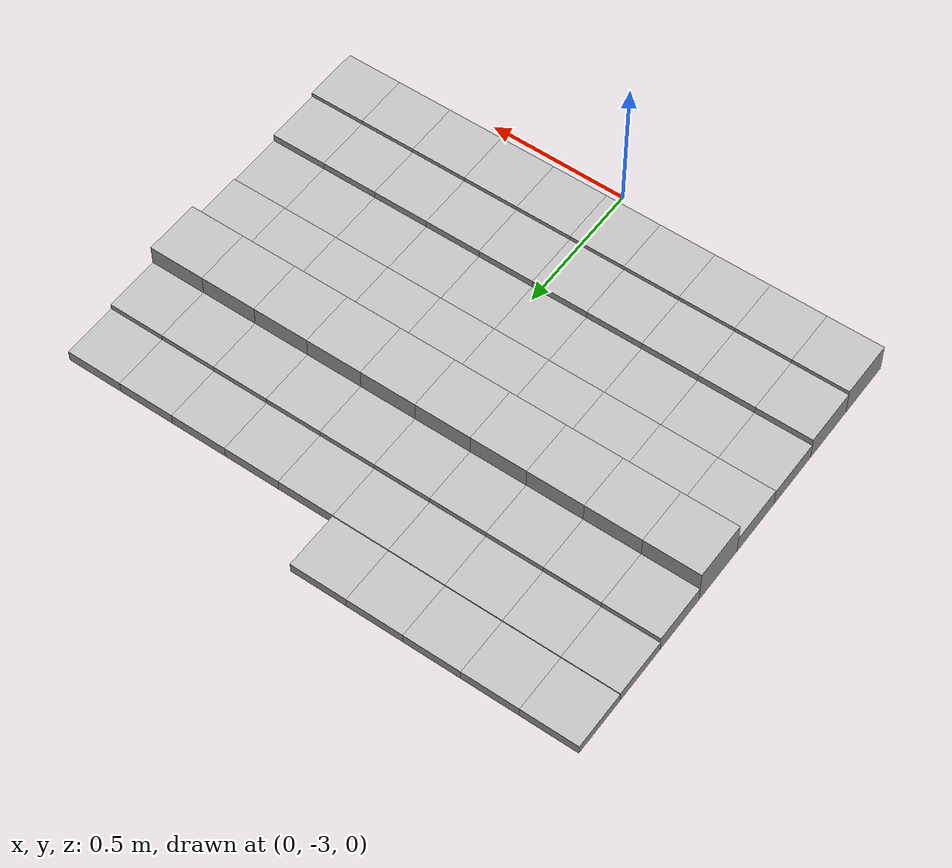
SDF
<sdf version="1.6">
 <model name="Terrain">
  <static>true</static>
  <link name="box_7_0">
   <pose>-0.9 -1.4 0.0180573859892 0 0 0</pose>
   <inertial>
    <mass>1.0</mass>
    <inertia><ixx>0.0</ixx><ixy>0.0</ixy><ixz>0.0</ixz><iyy>0.0</iyy><iyz>0.0</iyz><izz>0.0</izz></inertia>
   </inertial>
   <collision name="collision"><geometry><box><size>0.2 0.2 0.0361147719784</size></box></geometry></collision>
   <visual name="visual"><geometry><box><size>0.2 0.2 0.0361147719784</size></box></geometry></visual>
  </link>
  <link name="box_7_1">
   <pose>-0.7 -1.4 0.0180573859892 0 0 0</pose>
   <inertial>
    <mass>1.0</mass>
    <inertia><ixx>0.0</ixx><ixy>0.0</ixy><ixz>0.0</ixz><iyy>0.0</iyy><iyz>0.0</iyz><izz>0.0</izz></inertia>
   </inertial>
   <collision name="collision"><geometry><box><size>0.2 0.2 0.0361147719784</size></box></geometry></collision>
   <visual name="visual"><geometry><box><size>0.2 0.2 0.0361147719784</size></box></geometry></visual>
  </link>
  <link name="box_7_2">
   <pose>-0.5 -1.4 0.0180573859892 0 0 0</pose>
   <inertial>
    <mass>1.0</mass>
    <inertia><ixx>0.0</ixx><ixy>0.0</ixy><ixz>0.0</ixz><iyy>0.0</iyy><iyz>0.0</iyz><izz>0.0</izz></inertia>
   </inertial>
   <collision name="collision"><geometry><box><size>0.2 0.2 0.0361147719784</size></box></geometry></collision>
   <visual name="visual"><geometry><box><size>0.2 0.2 0.0361147719784</size></box></geometry></visual>
  </link>
  <link name="box_7_3">
   <pose>-0.3 -1.4 0.0180573859892 0 0 0</pose>
   <inertial>
    <mass>1.0</mass>
    <inertia><ixx>0.0</ixx><ixy>0.0</ixy><ixz>0.0</ixz><iyy>0.0</iyy><iyz>0.0</iyz><izz>0.0</izz></inertia>
   </inertial>
   <collision name="collision"><geometry><box><size>0.2 0.2 0.0361147719784</size></box></geometry></collision>
   <visual name="visual"><geometry><box><size>0.2 0.2 0.0361147719784</size></box></geometry></visual>
  </link>
  <link name="box_7_4">
   <pose>-0.1 -1.4 0.0180573859892 0 0 0</pose>
   <inertial>
    <mass>1.0</mass>
    <inertia><ixx>0.0</ixx><ixy>0.0</ixy><ixz>0.0</ixz><iyy>0.0</iyy><iyz>0.0</iyz><izz>0.0</izz></inertia>
   </inertial>
   <collision name="collision"><geometry><box><size>0.2 0.2 0.0361147719784</size></box></geometry></collision>
   <visual name="visual"><geometry><box><size>0.2 0.2 0.0361147719784</size></box></geometry></visual>
  </link>
  <link name="box_8_0">
   <pose>-0.9 -1.6 0.020179060471 0 0 0</pose>
   <inertial>
    <mass>1.0</mass>
    <inertia><ixx>0.0</ixx><ixy>0.0</ixy><ixz>0.0</ixz><iyy>0.0</iyy><iyz>0.0</iyz><izz>0.0</izz></inertia>
   </inertial>
   <collision name="collision"><geometry><box><size>0.2 0.2 0.0403581209421</size></box></geometry></collision>
   <visual name="visual"><geometry><box><size>0.2 0.2 0.0403581209421</size></box></geometry></visual>
  </link>
  <link name="box_8_1">
   <pose>-0.7 -1.6 0.020179060471 0 0 0</pose>
   <inertial>
    <mass>1.0</mass>
    <inertia><ixx>0.0</ixx><ixy>0.0</ixy><ixz>0.0</ixz><iyy>0.0</iyy><iyz>0.0</iyz><izz>0.0</izz></inertia>
   </inertial>
   <collision name="collision"><geometry><box><size>0.2 0.2 0.0403581209421</size></box></geometry></collision>
   <visual name="visual"><geometry><box><size>0.2 0.2 0.0403581209421</size></box></geometry></visual>
  </link>
  <link name="box_8_2">
   <pose>-0.5 -1.6 0.020179060471 0 0 0</pose>
   <inertial>
    <mass>1.0</mass>
    <inertia><ixx>0.0</ixx><ixy>0.0</ixy><ixz>0.0</ixz><iyy>0.0</iyy><iyz>0.0</iyz><izz>0.0</izz></inertia>
   </inertial>
   <collision name="collision"><geometry><box><size>0.2 0.2 0.0403581209421</size></box></geometry></collision>
   <visual name="visual"><geometry><box><size>0.2 0.2 0.0403581209421</size></box></geometry></visual>
  </link>
  <link name="box_8_3">
   <pose>-0.3 -1.6 0.020179060471 0 0 0</pose>
   <inertial>
    <mass>1.0</mass>
    <inertia><ixx>0.0</ixx><ixy>0.0</ixy><ixz>0.0</ixz><iyy>0.0</iyy><iyz>0.0</iyz><izz>0.0</izz></inertia>
   </inertial>
   <collision name="collision"><geometry><box><size>0.2 0.2 0.0403581209421</size></box></geometry></collision>
   <visual name="visual"><geometry><box><size>0.2 0.2 0.0403581209421</size></box></geometry></visual>
  </link>
  <link name="box_8_4">
   <pose>-0.1 -1.6 0.020179060471 0 0 0</pose>
   <inertial>
    <mass>1.0</mass>
    <inertia><ixx>0.0</ixx><ixy>0.0</ixy><ixz>0.0</ixz><iyy>0.0</iyy><iyz>0.0</iyz><izz>0.0</izz></inertia>
   </inertial>
   <collision name="collision"><geometry><box><size>0.2 0.2 0.0403581209421</size></box></geometry></collision>
   <visual name="visual"><geometry><box><size>0.2 0.2 0.0403581209421</size></box></geometry></visual>
  </link>
  <link name="box_8_5">
   <pose>0.1 -1.6 0.020179060471 0 0 0</pose>
   <inertial>
    <mass>1.0</mass>
    <inertia><ixx>0.0</ixx><ixy>0.0</ixy><ixz>0.0</ixz><iyy>0.0</iyy><iyz>0.0</iyz><izz>0.0</izz></inertia>
   </inertial>
   <collision name="collision"><geometry><box><size>0.2 0.2 0.0403581209421</size></box></geometry></collision>
   <visual name="visual"><geometry><box><size>0.2 0.2 0.0403581209421</size></box></geometry></visual>
  </link>
  <link name="box_8_6">
   <pose>0.3 -1.6 0.020179060471 0 0 0</pose>
   <inertial>
    <mass>1.0</mass>
    <inertia><ixx>0.0</ixx><ixy>0.0</ixy><ixz>0.0</ixz><iyy>0.0</iyy><iyz>0.0</iyz><izz>0.0</izz></inertia>
   </inertial>
   <collision name="collision"><geometry><box><size>0.2 0.2 0.0403581209421</size></box></geometry></collision>
   <visual name="visual"><geometry><box><size>0.2 0.2 0.0403581209421</size></box></geometry></visual>
  </link>
  <link name="box_8_7">
   <pose>0.5 -1.6 0.020179060471 0 0 0</pose>
   <inertial>
    <mass>1.0</mass>
    <inertia><ixx>0.0</ixx><ixy>0.0</ixy><ixz>0.0</ixz><iyy>0.0</iyy><iyz>0.0</iyz><izz>0.0</izz></inertia>
   </inertial>
   <collision name="collision"><geometry><box><size>0.2 0.2 0.0403581209421</size></box></geometry></collision>
   <visual name="visual"><geometry><box><size>0.2 0.2 0.0403581209421</size></box></geometry></visual>
  </link>
  <link name="box_8_8">
   <pose>0.7 -1.6 0.020179060471 0 0 0</pose>
   <inertial>
    <mass>1.0</mass>
    <inertia><ixx>0.0</ixx><ixy>0.0</ixy><ixz>0.0</ixz><iyy>0.0</iyy><iyz>0.0</iyz><izz>0.0</izz></inertia>
   </inertial>
   <collision name="collision"><geometry><box><size>0.2 0.2 0.0403581209421</size></box></geometry></collision>
   <visual name="visual"><geometry><box><size>0.2 0.2 0.0403581209421</size></box></geometry></visual>
  </link>
  <link name="box_8_9">
   <pose>0.9 -1.6 0.020179060471 0 0 0</pose>
   <inertial>
    <mass>1.0</mass>
    <inertia><ixx>0.0</ixx><ixy>0.0</ixy><ixz>0.0</ixz><iyy>0.0</iyy><iyz>0.0</iyz><izz>0.0</izz></inertia>
   </inertial>
   <collision name="collision"><geometry><box><size>0.2 0.2 0.0403581209421</size></box></geometry></collision>
   <visual name="visual"><geometry><box><size>0.2 0.2 0.0403581209421</size></box></geometry></visual>
  </link>
  <link name="box_9_0">
   <pose>-0.9 -1.8 0.0305627378734 0 0 0</pose>
   <inertial>
    <mass>1.0</mass>
    <inertia><ixx>0.0</ixx><ixy>0.0</ixy><ixz>0.0</ixz><iyy>0.0</iyy><iyz>0.0</iyz><izz>0.0</izz></inertia>
   </inertial>
   <collision name="collision"><geometry><box><size>0.2 0.2 0.0611254757468</size></box></geometry></collision>
   <visual name="visual"><geometry><box><size>0.2 0.2 0.0611254757468</size></box></geometry></visual>
  </link>
  <link name="box_9_1">
   <pose>-0.7 -1.8 0.0305627378734 0 0 0</pose>
   <inertial>
    <mass>1.0</mass>
    <inertia><ixx>0.0</ixx><ixy>0.0</ixy><ixz>0.0</ixz><iyy>0.0</iyy><iyz>0.0</iyz><izz>0.0</izz></inertia>
   </inertial>
   <collision name="collision"><geometry><box><size>0.2 0.2 0.0611254757468</size></box></geometry></collision>
   <visual name="visual"><geometry><box><size>0.2 0.2 0.0611254757468</size></box></geometry></visual>
  </link>
  <link name="box_9_2">
   <pose>-0.5 -1.8 0.0305627378734 0 0 0</pose>
   <inertial>
    <mass>1.0</mass>
    <inertia><ixx>0.0</ixx><ixy>0.0</ixy><ixz>0.0</ixz><iyy>0.0</iyy><iyz>0.0</iyz><izz>0.0</izz></inertia>
   </inertial>
   <collision name="collision"><geometry><box><size>0.2 0.2 0.0611254757468</size></box></geometry></collision>
   <visual name="visual"><geometry><box><size>0.2 0.2 0.0611254757468</size></box></geometry></visual>
  </link>
  <link name="box_9_3">
   <pose>-0.3 -1.8 0.0305627378734 0 0 0</pose>
   <inertial>
    <mass>1.0</mass>
    <inertia><ixx>0.0</ixx><ixy>0.0</ixy><ixz>0.0</ixz><iyy>0.0</iyy><iyz>0.0</iyz><izz>0.0</izz></inertia>
   </inertial>
   <collision name="collision"><geometry><box><size>0.2 0.2 0.0611254757468</size></box></geometry></collision>
   <visual name="visual"><geometry><box><size>0.2 0.2 0.0611254757468</size></box></geometry></visual>
  </link>
  <link name="box_9_4">
   <pose>-0.1 -1.8 0.0305627378734 0 0 0</pose>
   <inertial>
    <mass>1.0</mass>
    <inertia><ixx>0.0</ixx><ixy>0.0</ixy><ixz>0.0</ixz><iyy>0.0</iyy><iyz>0.0</iyz><izz>0.0</izz></inertia>
   </inertial>
   <collision name="collision"><geometry><box><size>0.2 0.2 0.0611254757468</size></box></geometry></collision>
   <visual name="visual"><geometry><box><size>0.2 0.2 0.0611254757468</size></box></geometry></visual>
  </link>
  <link name="box_9_5">
   <pose>0.1 -1.8 0.0305627378734 0 0 0</pose>
   <inertial>
    <mass>1.0</mass>
    <inertia><ixx>0.0</ixx><ixy>0.0</ixy><ixz>0.0</ixz><iyy>0.0</iyy><iyz>0.0</iyz><izz>0.0</izz></inertia>
   </inertial>
   <collision name="collision"><geometry><box><size>0.2 0.2 0.0611254757468</size></box></geometry></collision>
   <visual name="visual"><geometry><box><size>0.2 0.2 0.0611254757468</size></box></geometry></visual>
  </link>
  <link name="box_9_6">
   <pose>0.3 -1.8 0.0305627378734 0 0 0</pose>
   <inertial>
    <mass>1.0</mass>
    <inertia><ixx>0.0</ixx><ixy>0.0</ixy><ixz>0.0</ixz><iyy>0.0</iyy><iyz>0.0</iyz><izz>0.0</izz></inertia>
   </inertial>
   <collision name="collision"><geometry><box><size>0.2 0.2 0.0611254757468</size></box></geometry></collision>
   <visual name="visual"><geometry><box><size>0.2 0.2 0.0611254757468</size></box></geometry></visual>
  </link>
  <link name="box_9_7">
   <pose>0.5 -1.8 0.0305627378734 0 0 0</pose>
   <inertial>
    <mass>1.0</mass>
    <inertia><ixx>0.0</ixx><ixy>0.0</ixy><ixz>0.0</ixz><iyy>0.0</iyy><iyz>0.0</iyz><izz>0.0</izz></inertia>
   </inertial>
   <collision name="collision"><geometry><box><size>0.2 0.2 0.0611254757468</size></box></geometry></collision>
   <visual name="visual"><geometry><box><size>0.2 0.2 0.0611254757468</size></box></geometry></visual>
  </link>
  <link name="box_9_8">
   <pose>0.7 -1.8 0.0305627378734 0 0 0</pose>
   <inertial>
    <mass>1.0</mass>
    <inertia><ixx>0.0</ixx><ixy>0.0</ixy><ixz>0.0</ixz><iyy>0.0</iyy><iyz>0.0</iyz><izz>0.0</izz></inertia>
   </inertial>
   <collision name="collision"><geometry><box><size>0.2 0.2 0.0611254757468</size></box></geometry></collision>
   <visual name="visual"><geometry><box><size>0.2 0.2 0.0611254757468</size></box></geometry></visual>
  </link>
  <link name="box_9_9">
   <pose>0.9 -1.8 0.0305627378734 0 0 0</pose>
   <inertial>
    <mass>1.0</mass>
    <inertia><ixx>0.0</ixx><ixy>0.0</ixy><ixz>0.0</ixz><iyy>0.0</iyy><iyz>0.0</iyz><izz>0.0</izz></inertia>
   </inertial>
   <collision name="collision"><geometry><box><size>0.2 0.2 0.0611254757468</size></box></geometry></collision>
   <visual name="visual"><geometry><box><size>0.2 0.2 0.0611254757468</size></box></geometry></visual>
  </link>
  <link name="box_10_0">
   <pose>-0.9 -2.0 0.0668215739032 0 0 0</pose>
   <inertial>
    <mass>1.0</mass>
    <inertia><ixx>0.0</ixx><ixy>0.0</ixy><ixz>0.0</ixz><iyy>0.0</iyy><iyz>0.0</iyz><izz>0.0</izz></inertia>
   </inertial>
   <collision name="collision"><geometry><box><size>0.2 0.2 0.133643147806</size></box></geometry></collision>
   <visual name="visual"><geometry><box><size>0.2 0.2 0.133643147806</size></box></geometry></visual>
  </link>
  <link name="box_10_1">
   <pose>-0.7 -2.0 0.0668215739032 0 0 0</pose>
   <inertial>
    <mass>1.0</mass>
    <inertia><ixx>0.0</ixx><ixy>0.0</ixy><ixz>0.0</ixz><iyy>0.0</iyy><iyz>0.0</iyz><izz>0.0</izz></inertia>
   </inertial>
   <collision name="collision"><geometry><box><size>0.2 0.2 0.133643147806</size></box></geometry></collision>
   <visual name="visual"><geometry><box><size>0.2 0.2 0.133643147806</size></box></geometry></visual>
  </link>
  <link name="box_10_2">
   <pose>-0.5 -2.0 0.0668215739032 0 0 0</pose>
   <inertial>
    <mass>1.0</mass>
    <inertia><ixx>0.0</ixx><ixy>0.0</ixy><ixz>0.0</ixz><iyy>0.0</iyy><iyz>0.0</iyz><izz>0.0</izz></inertia>
   </inertial>
   <collision name="collision"><geometry><box><size>0.2 0.2 0.133643147806</size></box></geometry></collision>
   <visual name="visual"><geometry><box><size>0.2 0.2 0.133643147806</size></box></geometry></visual>
  </link>
  <link name="box_10_3">
   <pose>-0.3 -2.0 0.0668215739032 0 0 0</pose>
   <inertial>
    <mass>1.0</mass>
    <inertia><ixx>0.0</ixx><ixy>0.0</ixy><ixz>0.0</ixz><iyy>0.0</iyy><iyz>0.0</iyz><izz>0.0</izz></inertia>
   </inertial>
   <collision name="collision"><geometry><box><size>0.2 0.2 0.133643147806</size></box></geometry></collision>
   <visual name="visual"><geometry><box><size>0.2 0.2 0.133643147806</size></box></geometry></visual>
  </link>
  <link name="box_10_4">
   <pose>-0.1 -2.0 0.0668215739032 0 0 0</pose>
   <inertial>
    <mass>1.0</mass>
    <inertia><ixx>0.0</ixx><ixy>0.0</ixy><ixz>0.0</ixz><iyy>0.0</iyy><iyz>0.0</iyz><izz>0.0</izz></inertia>
   </inertial>
   <collision name="collision"><geometry><box><size>0.2 0.2 0.133643147806</size></box></geometry></collision>
   <visual name="visual"><geometry><box><size>0.2 0.2 0.133643147806</size></box></geometry></visual>
  </link>
  <link name="box_10_5">
   <pose>0.1 -2.0 0.0668215739032 0 0 0</pose>
   <inertial>
    <mass>1.0</mass>
    <inertia><ixx>0.0</ixx><ixy>0.0</ixy><ixz>0.0</ixz><iyy>0.0</iyy><iyz>0.0</iyz><izz>0.0</izz></inertia>
   </inertial>
   <collision name="collision"><geometry><box><size>0.2 0.2 0.133643147806</size></box></geometry></collision>
   <visual name="visual"><geometry><box><size>0.2 0.2 0.133643147806</size></box></geometry></visual>
  </link>
  <link name="box_10_6">
   <pose>0.3 -2.0 0.0668215739032 0 0 0</pose>
   <inertial>
    <mass>1.0</mass>
    <inertia><ixx>0.0</ixx><ixy>0.0</ixy><ixz>0.0</ixz><iyy>0.0</iyy><iyz>0.0</iyz><izz>0.0</izz></inertia>
   </inertial>
   <collision name="collision"><geometry><box><size>0.2 0.2 0.133643147806</size></box></geometry></collision>
   <visual name="visual"><geometry><box><size>0.2 0.2 0.133643147806</size></box></geometry></visual>
  </link>
  <link name="box_10_7">
   <pose>0.5 -2.0 0.0668215739032 0 0 0</pose>
   <inertial>
    <mass>1.0</mass>
    <inertia><ixx>0.0</ixx><ixy>0.0</ixy><ixz>0.0</ixz><iyy>0.0</iyy><iyz>0.0</iyz><izz>0.0</izz></inertia>
   </inertial>
   <collision name="collision"><geometry><box><size>0.2 0.2 0.133643147806</size></box></geometry></collision>
   <visual name="visual"><geometry><box><size>0.2 0.2 0.133643147806</size></box></geometry></visual>
  </link>
  <link name="box_10_8">
   <pose>0.7 -2.0 0.0668215739032 0 0 0</pose>
   <inertial>
    <mass>1.0</mass>
    <inertia><ixx>0.0</ixx><ixy>0.0</ixy><ixz>0.0</ixz><iyy>0.0</iyy><iyz>0.0</iyz><izz>0.0</izz></inertia>
   </inertial>
   <collision name="collision"><geometry><box><size>0.2 0.2 0.133643147806</size></box></geometry></collision>
   <visual name="visual"><geometry><box><size>0.2 0.2 0.133643147806</size></box></geometry></visual>
  </link>
  <link name="box_10_9">
   <pose>0.9 -2.0 0.0668215739032 0 0 0</pose>
   <inertial>
    <mass>1.0</mass>
    <inertia><ixx>0.0</ixx><ixy>0.0</ixy><ixz>0.0</ixz><iyy>0.0</iyy><iyz>0.0</iyz><izz>0.0</izz></inertia>
   </inertial>
   <collision name="collision"><geometry><box><size>0.2 0.2 0.133643147806</size></box></geometry></collision>
   <visual name="visual"><geometry><box><size>0.2 0.2 0.133643147806</size></box></geometry></visual>
  </link>
  <link name="box_11_0">
   <pose>-0.9 -2.2 0.0351536211272 0 0 0</pose>
   <inertial>
    <mass>1.0</mass>
    <inertia><ixx>0.0</ixx><ixy>0.0</ixy><ixz>0.0</ixz><iyy>0.0</iyy><iyz>0.0</iyz><izz>0.0</izz></inertia>
   </inertial>
   <collision name="collision"><geometry><box><size>0.2 0.2 0.0703072422544</size></box></geometry></collision>
   <visual name="visual"><geometry><box><size>0.2 0.2 0.0703072422544</size></box></geometry></visual>
  </link>
  <link name="box_11_1">
   <pose>-0.7 -2.2 0.0351536211272 0 0 0</pose>
   <inertial>
    <mass>1.0</mass>
    <inertia><ixx>0.0</ixx><ixy>0.0</ixy><ixz>0.0</ixz><iyy>0.0</iyy><iyz>0.0</iyz><izz>0.0</izz></inertia>
   </inertial>
   <collision name="collision"><geometry><box><size>0.2 0.2 0.0703072422544</size></box></geometry></collision>
   <visual name="visual"><geometry><box><size>0.2 0.2 0.0703072422544</size></box></geometry></visual>
  </link>
  <link name="box_11_2">
   <pose>-0.5 -2.2 0.0351536211272 0 0 0</pose>
   <inertial>
    <mass>1.0</mass>
    <inertia><ixx>0.0</ixx><ixy>0.0</ixy><ixz>0.0</ixz><iyy>0.0</iyy><iyz>0.0</iyz><izz>0.0</izz></inertia>
   </inertial>
   <collision name="collision"><geometry><box><size>0.2 0.2 0.0703072422544</size></box></geometry></collision>
   <visual name="visual"><geometry><box><size>0.2 0.2 0.0703072422544</size></box></geometry></visual>
  </link>
  <link name="box_11_3">
   <pose>-0.3 -2.2 0.0351536211272 0 0 0</pose>
   <inertial>
    <mass>1.0</mass>
    <inertia><ixx>0.0</ixx><ixy>0.0</ixy><ixz>0.0</ixz><iyy>0.0</iyy><iyz>0.0</iyz><izz>0.0</izz></inertia>
   </inertial>
   <collision name="collision"><geometry><box><size>0.2 0.2 0.0703072422544</size></box></geometry></collision>
   <visual name="visual"><geometry><box><size>0.2 0.2 0.0703072422544</size></box></geometry></visual>
  </link>
  <link name="box_11_4">
   <pose>-0.1 -2.2 0.0351536211272 0 0 0</pose>
   <inertial>
    <mass>1.0</mass>
    <inertia><ixx>0.0</ixx><ixy>0.0</ixy><ixz>0.0</ixz><iyy>0.0</iyy><iyz>0.0</iyz><izz>0.0</izz></inertia>
   </inertial>
   <collision name="collision"><geometry><box><size>0.2 0.2 0.0703072422544</size></box></geometry></collision>
   <visual name="visual"><geometry><box><size>0.2 0.2 0.0703072422544</size></box></geometry></visual>
  </link>
  <link name="box_11_5">
   <pose>0.1 -2.2 0.0351536211272 0 0 0</pose>
   <inertial>
    <mass>1.0</mass>
    <inertia><ixx>0.0</ixx><ixy>0.0</ixy><ixz>0.0</ixz><iyy>0.0</iyy><iyz>0.0</iyz><izz>0.0</izz></inertia>
   </inertial>
   <collision name="collision"><geometry><box><size>0.2 0.2 0.0703072422544</size></box></geometry></collision>
   <visual name="visual"><geometry><box><size>0.2 0.2 0.0703072422544</size></box></geometry></visual>
  </link>
  <link name="box_11_6">
   <pose>0.3 -2.2 0.0351536211272 0 0 0</pose>
   <inertial>
    <mass>1.0</mass>
    <inertia><ixx>0.0</ixx><ixy>0.0</ixy><ixz>0.0</ixz><iyy>0.0</iyy><iyz>0.0</iyz><izz>0.0</izz></inertia>
   </inertial>
   <collision name="collision"><geometry><box><size>0.2 0.2 0.0703072422544</size></box></geometry></collision>
   <visual name="visual"><geometry><box><size>0.2 0.2 0.0703072422544</size></box></geometry></visual>
  </link>
  <link name="box_11_7">
   <pose>0.5 -2.2 0.0351536211272 0 0 0</pose>
   <inertial>
    <mass>1.0</mass>
    <inertia><ixx>0.0</ixx><ixy>0.0</ixy><ixz>0.0</ixz><iyy>0.0</iyy><iyz>0.0</iyz><izz>0.0</izz></inertia>
   </inertial>
   <collision name="collision"><geometry><box><size>0.2 0.2 0.0703072422544</size></box></geometry></collision>
   <visual name="visual"><geometry><box><size>0.2 0.2 0.0703072422544</size></box></geometry></visual>
  </link>
  <link name="box_11_8">
   <pose>0.7 -2.2 0.0351536211272 0 0 0</pose>
   <inertial>
    <mass>1.0</mass>
    <inertia><ixx>0.0</ixx><ixy>0.0</ixy><ixz>0.0</ixz><iyy>0.0</iyy><iyz>0.0</iyz><izz>0.0</izz></inertia>
   </inertial>
   <collision name="collision"><geometry><box><size>0.2 0.2 0.0703072422544</size></box></geometry></collision>
   <visual name="visual"><geometry><box><size>0.2 0.2 0.0703072422544</size></box></geometry></visual>
  </link>
  <link name="box_11_9">
   <pose>0.9 -2.2 0.0351536211272 0 0 0</pose>
   <inertial>
    <mass>1.0</mass>
    <inertia><ixx>0.0</ixx><ixy>0.0</ixy><ixz>0.0</ixz><iyy>0.0</iyy><iyz>0.0</iyz><izz>0.0</izz></inertia>
   </inertial>
   <collision name="collision"><geometry><box><size>0.2 0.2 0.0703072422544</size></box></geometry></collision>
   <visual name="visual"><geometry><box><size>0.2 0.2 0.0703072422544</size></box></geometry></visual>
  </link>
  <link name="box_12_0">
   <pose>-0.9 -2.4 0.0328366975127 0 0 0</pose>
   <inertial>
    <mass>1.0</mass>
    <inertia><ixx>0.0</ixx><ixy>0.0</ixy><ixz>0.0</ixz><iyy>0.0</iyy><iyz>0.0</iyz><izz>0.0</izz></inertia>
   </inertial>
   <collision name="collision"><geometry><box><size>0.2 0.2 0.0656733950254</size></box></geometry></collision>
   <visual name="visual"><geometry><box><size>0.2 0.2 0.0656733950254</size></box></geometry></visual>
  </link>
  <link name="box_12_1">
   <pose>-0.7 -2.4 0.0328366975127 0 0 0</pose>
   <inertial>
    <mass>1.0</mass>
    <inertia><ixx>0.0</ixx><ixy>0.0</ixy><ixz>0.0</ixz><iyy>0.0</iyy><iyz>0.0</iyz><izz>0.0</izz></inertia>
   </inertial>
   <collision name="collision"><geometry><box><size>0.2 0.2 0.0656733950254</size></box></geometry></collision>
   <visual name="visual"><geometry><box><size>0.2 0.2 0.0656733950254</size></box></geometry></visual>
  </link>
  <link name="box_12_2">
   <pose>-0.5 -2.4 0.0328366975127 0 0 0</pose>
   <inertial>
    <mass>1.0</mass>
    <inertia><ixx>0.0</ixx><ixy>0.0</ixy><ixz>0.0</ixz><iyy>0.0</iyy><iyz>0.0</iyz><izz>0.0</izz></inertia>
   </inertial>
   <collision name="collision"><geometry><box><size>0.2 0.2 0.0656733950254</size></box></geometry></collision>
   <visual name="visual"><geometry><box><size>0.2 0.2 0.0656733950254</size></box></geometry></visual>
  </link>
  <link name="box_12_3">
   <pose>-0.3 -2.4 0.0328366975127 0 0 0</pose>
   <inertial>
    <mass>1.0</mass>
    <inertia><ixx>0.0</ixx><ixy>0.0</ixy><ixz>0.0</ixz><iyy>0.0</iyy><iyz>0.0</iyz><izz>0.0</izz></inertia>
   </inertial>
   <collision name="collision"><geometry><box><size>0.2 0.2 0.0656733950254</size></box></geometry></collision>
   <visual name="visual"><geometry><box><size>0.2 0.2 0.0656733950254</size></box></geometry></visual>
  </link>
  <link name="box_12_4">
   <pose>-0.1 -2.4 0.0328366975127 0 0 0</pose>
   <inertial>
    <mass>1.0</mass>
    <inertia><ixx>0.0</ixx><ixy>0.0</ixy><ixz>0.0</ixz><iyy>0.0</iyy><iyz>0.0</iyz><izz>0.0</izz></inertia>
   </inertial>
   <collision name="collision"><geometry><box><size>0.2 0.2 0.0656733950254</size></box></geometry></collision>
   <visual name="visual"><geometry><box><size>0.2 0.2 0.0656733950254</size></box></geometry></visual>
  </link>
  <link name="box_12_5">
   <pose>0.1 -2.4 0.0328366975127 0 0 0</pose>
   <inertial>
    <mass>1.0</mass>
    <inertia><ixx>0.0</ixx><ixy>0.0</ixy><ixz>0.0</ixz><iyy>0.0</iyy><iyz>0.0</iyz><izz>0.0</izz></inertia>
   </inertial>
   <collision name="collision"><geometry><box><size>0.2 0.2 0.0656733950254</size></box></geometry></collision>
   <visual name="visual"><geometry><box><size>0.2 0.2 0.0656733950254</size></box></geometry></visual>
  </link>
  <link name="box_12_6">
   <pose>0.3 -2.4 0.0328366975127 0 0 0</pose>
   <inertial>
    <mass>1.0</mass>
    <inertia><ixx>0.0</ixx><ixy>0.0</ixy><ixz>0.0</ixz><iyy>0.0</iyy><iyz>0.0</iyz><izz>0.0</izz></inertia>
   </inertial>
   <collision name="collision"><geometry><box><size>0.2 0.2 0.0656733950254</size></box></geometry></collision>
   <visual name="visual"><geometry><box><size>0.2 0.2 0.0656733950254</size></box></geometry></visual>
  </link>
  <link name="box_12_7">
   <pose>0.5 -2.4 0.0328366975127 0 0 0</pose>
   <inertial>
    <mass>1.0</mass>
    <inertia><ixx>0.0</ixx><ixy>0.0</ixy><ixz>0.0</ixz><iyy>0.0</iyy><iyz>0.0</iyz><izz>0.0</izz></inertia>
   </inertial>
   <collision name="collision"><geometry><box><size>0.2 0.2 0.0656733950254</size></box></geometry></collision>
   <visual name="visual"><geometry><box><size>0.2 0.2 0.0656733950254</size></box></geometry></visual>
  </link>
  <link name="box_12_8">
   <pose>0.7 -2.4 0.0328366975127 0 0 0</pose>
   <inertial>
    <mass>1.0</mass>
    <inertia><ixx>0.0</ixx><ixy>0.0</ixy><ixz>0.0</ixz><iyy>0.0</iyy><iyz>0.0</iyz><izz>0.0</izz></inertia>
   </inertial>
   <collision name="collision"><geometry><box><size>0.2 0.2 0.0656733950254</size></box></geometry></collision>
   <visual name="visual"><geometry><box><size>0.2 0.2 0.0656733950254</size></box></geometry></visual>
  </link>
  <link name="box_12_9">
   <pose>0.9 -2.4 0.0328366975127 0 0 0</pose>
   <inertial>
    <mass>1.0</mass>
    <inertia><ixx>0.0</ixx><ixy>0.0</ixy><ixz>0.0</ixz><iyy>0.0</iyy><iyz>0.0</iyz><izz>0.0</izz></inertia>
   </inertial>
   <collision name="collision"><geometry><box><size>0.2 0.2 0.0656733950254</size></box></geometry></collision>
   <visual name="visual"><geometry><box><size>0.2 0.2 0.0656733950254</size></box></geometry></visual>
  </link>
  <link name="box_13_0">
   <pose>-0.9 -2.6 0.0461713760122 0 0 0</pose>
   <inertial>
    <mass>1.0</mass>
    <inertia><ixx>0.0</ixx><ixy>0.0</ixy><ixz>0.0</ixz><iyy>0.0</iyy><iyz>0.0</iyz><izz>0.0</izz></inertia>
   </inertial>
   <collision name="collision"><geometry><box><size>0.2 0.2 0.0923427520244</size></box></geometry></collision>
   <visual name="visual"><geometry><box><size>0.2 0.2 0.0923427520244</size></box></geometry></visual>
  </link>
  <link name="box_13_1">
   <pose>-0.7 -2.6 0.0461713760122 0 0 0</pose>
   <inertial>
    <mass>1.0</mass>
    <inertia><ixx>0.0</ixx><ixy>0.0</ixy><ixz>0.0</ixz><iyy>0.0</iyy><iyz>0.0</iyz><izz>0.0</izz></inertia>
   </inertial>
   <collision name="collision"><geometry><box><size>0.2 0.2 0.0923427520244</size></box></geometry></collision>
   <visual name="visual"><geometry><box><size>0.2 0.2 0.0923427520244</size></box></geometry></visual>
  </link>
  <link name="box_13_2">
   <pose>-0.5 -2.6 0.0461713760122 0 0 0</pose>
   <inertial>
    <mass>1.0</mass>
    <inertia><ixx>0.0</ixx><ixy>0.0</ixy><ixz>0.0</ixz><iyy>0.0</iyy><iyz>0.0</iyz><izz>0.0</izz></inertia>
   </inertial>
   <collision name="collision"><geometry><box><size>0.2 0.2 0.0923427520244</size></box></geometry></collision>
   <visual name="visual"><geometry><box><size>0.2 0.2 0.0923427520244</size></box></geometry></visual>
  </link>
  <link name="box_13_3">
   <pose>-0.3 -2.6 0.0461713760122 0 0 0</pose>
   <inertial>
    <mass>1.0</mass>
    <inertia><ixx>0.0</ixx><ixy>0.0</ixy><ixz>0.0</ixz><iyy>0.0</iyy><iyz>0.0</iyz><izz>0.0</izz></inertia>
   </inertial>
   <collision name="collision"><geometry><box><size>0.2 0.2 0.0923427520244</size></box></geometry></collision>
   <visual name="visual"><geometry><box><size>0.2 0.2 0.0923427520244</size></box></geometry></visual>
  </link>
  <link name="box_13_4">
   <pose>-0.1 -2.6 0.0461713760122 0 0 0</pose>
   <inertial>
    <mass>1.0</mass>
    <inertia><ixx>0.0</ixx><ixy>0.0</ixy><ixz>0.0</ixz><iyy>0.0</iyy><iyz>0.0</iyz><izz>0.0</izz></inertia>
   </inertial>
   <collision name="collision"><geometry><box><size>0.2 0.2 0.0923427520244</size></box></geometry></collision>
   <visual name="visual"><geometry><box><size>0.2 0.2 0.0923427520244</size></box></geometry></visual>
  </link>
  <link name="box_13_5">
   <pose>0.1 -2.6 0.0461713760122 0 0 0</pose>
   <inertial>
    <mass>1.0</mass>
    <inertia><ixx>0.0</ixx><ixy>0.0</ixy><ixz>0.0</ixz><iyy>0.0</iyy><iyz>0.0</iyz><izz>0.0</izz></inertia>
   </inertial>
   <collision name="collision"><geometry><box><size>0.2 0.2 0.0923427520244</size></box></geometry></collision>
   <visual name="visual"><geometry><box><size>0.2 0.2 0.0923427520244</size></box></geometry></visual>
  </link>
  <link name="box_13_6">
   <pose>0.3 -2.6 0.0461713760122 0 0 0</pose>
   <inertial>
    <mass>1.0</mass>
    <inertia><ixx>0.0</ixx><ixy>0.0</ixy><ixz>0.0</ixz><iyy>0.0</iyy><iyz>0.0</iyz><izz>0.0</izz></inertia>
   </inertial>
   <collision name="collision"><geometry><box><size>0.2 0.2 0.0923427520244</size></box></geometry></collision>
   <visual name="visual"><geometry><box><size>0.2 0.2 0.0923427520244</size></box></geometry></visual>
  </link>
  <link name="box_13_7">
   <pose>0.5 -2.6 0.0461713760122 0 0 0</pose>
   <inertial>
    <mass>1.0</mass>
    <inertia><ixx>0.0</ixx><ixy>0.0</ixy><ixz>0.0</ixz><iyy>0.0</iyy><iyz>0.0</iyz><izz>0.0</izz></inertia>
   </inertial>
   <collision name="collision"><geometry><box><size>0.2 0.2 0.0923427520244</size></box></geometry></collision>
   <visual name="visual"><geometry><box><size>0.2 0.2 0.0923427520244</size></box></geometry></visual>
  </link>
  <link name="box_13_8">
   <pose>0.7 -2.6 0.0461713760122 0 0 0</pose>
   <inertial>
    <mass>1.0</mass>
    <inertia><ixx>0.0</ixx><ixy>0.0</ixy><ixz>0.0</ixz><iyy>0.0</iyy><iyz>0.0</iyz><izz>0.0</izz></inertia>
   </inertial>
   <collision name="collision"><geometry><box><size>0.2 0.2 0.0923427520244</size></box></geometry></collision>
   <visual name="visual"><geometry><box><size>0.2 0.2 0.0923427520244</size></box></geometry></visual>
  </link>
  <link name="box_13_9">
   <pose>0.9 -2.6 0.0461713760122 0 0 0</pose>
   <inertial>
    <mass>1.0</mass>
    <inertia><ixx>0.0</ixx><ixy>0.0</ixy><ixz>0.0</ixz><iyy>0.0</iyy><iyz>0.0</iyz><izz>0.0</izz></inertia>
   </inertial>
   <collision name="collision"><geometry><box><size>0.2 0.2 0.0923427520244</size></box></geometry></collision>
   <visual name="visual"><geometry><box><size>0.2 0.2 0.0923427520244</size></box></geometry></visual>
  </link>
  <link name="box_14_0">
   <pose>-0.9 -2.8 0.0538731857946 0 0 0</pose>
   <inertial>
    <mass>1.0</mass>
    <inertia><ixx>0.0</ixx><ixy>0.0</ixy><ixz>0.0</ixz><iyy>0.0</iyy><iyz>0.0</iyz><izz>0.0</izz></inertia>
   </inertial>
   <collision name="collision"><geometry><box><size>0.2 0.2 0.107746371589</size></box></geometry></collision>
   <visual name="visual"><geometry><box><size>0.2 0.2 0.107746371589</size></box></geometry></visual>
  </link>
  <link name="box_14_1">
   <pose>-0.7 -2.8 0.0538731857946 0 0 0</pose>
   <inertial>
    <mass>1.0</mass>
    <inertia><ixx>0.0</ixx><ixy>0.0</ixy><ixz>0.0</ixz><iyy>0.0</iyy><iyz>0.0</iyz><izz>0.0</izz></inertia>
   </inertial>
   <collision name="collision"><geometry><box><size>0.2 0.2 0.107746371589</size></box></geometry></collision>
   <visual name="visual"><geometry><box><size>0.2 0.2 0.107746371589</size></box></geometry></visual>
  </link>
  <link name="box_14_2">
   <pose>-0.5 -2.8 0.0538731857946 0 0 0</pose>
   <inertial>
    <mass>1.0</mass>
    <inertia><ixx>0.0</ixx><ixy>0.0</ixy><ixz>0.0</ixz><iyy>0.0</iyy><iyz>0.0</iyz><izz>0.0</izz></inertia>
   </inertial>
   <collision name="collision"><geometry><box><size>0.2 0.2 0.107746371589</size></box></geometry></collision>
   <visual name="visual"><geometry><box><size>0.2 0.2 0.107746371589</size></box></geometry></visual>
  </link>
  <link name="box_14_3">
   <pose>-0.3 -2.8 0.0538731857946 0 0 0</pose>
   <inertial>
    <mass>1.0</mass>
    <inertia><ixx>0.0</ixx><ixy>0.0</ixy><ixz>0.0</ixz><iyy>0.0</iyy><iyz>0.0</iyz><izz>0.0</izz></inertia>
   </inertial>
   <collision name="collision"><geometry><box><size>0.2 0.2 0.107746371589</size></box></geometry></collision>
   <visual name="visual"><geometry><box><size>0.2 0.2 0.107746371589</size></box></geometry></visual>
  </link>
  <link name="box_14_4">
   <pose>-0.1 -2.8 0.0538731857946 0 0 0</pose>
   <inertial>
    <mass>1.0</mass>
    <inertia><ixx>0.0</ixx><ixy>0.0</ixy><ixz>0.0</ixz><iyy>0.0</iyy><iyz>0.0</iyz><izz>0.0</izz></inertia>
   </inertial>
   <collision name="collision"><geometry><box><size>0.2 0.2 0.107746371589</size></box></geometry></collision>
   <visual name="visual"><geometry><box><size>0.2 0.2 0.107746371589</size></box></geometry></visual>
  </link>
  <link name="box_14_5">
   <pose>0.1 -2.8 0.0538731857946 0 0 0</pose>
   <inertial>
    <mass>1.0</mass>
    <inertia><ixx>0.0</ixx><ixy>0.0</ixy><ixz>0.0</ixz><iyy>0.0</iyy><iyz>0.0</iyz><izz>0.0</izz></inertia>
   </inertial>
   <collision name="collision"><geometry><box><size>0.2 0.2 0.107746371589</size></box></geometry></collision>
   <visual name="visual"><geometry><box><size>0.2 0.2 0.107746371589</size></box></geometry></visual>
  </link>
  <link name="box_14_6">
   <pose>0.3 -2.8 0.0538731857946 0 0 0</pose>
   <inertial>
    <mass>1.0</mass>
    <inertia><ixx>0.0</ixx><ixy>0.0</ixy><ixz>0.0</ixz><iyy>0.0</iyy><iyz>0.0</iyz><izz>0.0</izz></inertia>
   </inertial>
   <collision name="collision"><geometry><box><size>0.2 0.2 0.107746371589</size></box></geometry></collision>
   <visual name="visual"><geometry><box><size>0.2 0.2 0.107746371589</size></box></geometry></visual>
  </link>
  <link name="box_14_7">
   <pose>0.5 -2.8 0.0538731857946 0 0 0</pose>
   <inertial>
    <mass>1.0</mass>
    <inertia><ixx>0.0</ixx><ixy>0.0</ixy><ixz>0.0</ixz><iyy>0.0</iyy><iyz>0.0</iyz><izz>0.0</izz></inertia>
   </inertial>
   <collision name="collision"><geometry><box><size>0.2 0.2 0.107746371589</size></box></geometry></collision>
   <visual name="visual"><geometry><box><size>0.2 0.2 0.107746371589</size></box></geometry></visual>
  </link>
  <link name="box_14_8">
   <pose>0.7 -2.8 0.0538731857946 0 0 0</pose>
   <inertial>
    <mass>1.0</mass>
    <inertia><ixx>0.0</ixx><ixy>0.0</ixy><ixz>0.0</ixz><iyy>0.0</iyy><iyz>0.0</iyz><izz>0.0</izz></inertia>
   </inertial>
   <collision name="collision"><geometry><box><size>0.2 0.2 0.107746371589</size></box></geometry></collision>
   <visual name="visual"><geometry><box><size>0.2 0.2 0.107746371589</size></box></geometry></visual>
  </link>
  <link name="box_14_9">
   <pose>0.9 -2.8 0.0538731857946 0 0 0</pose>
   <inertial>
    <mass>1.0</mass>
    <inertia><ixx>0.0</ixx><ixy>0.0</ixy><ixz>0.0</ixz><iyy>0.0</iyy><iyz>0.0</iyz><izz>0.0</izz></inertia>
   </inertial>
   <collision name="collision"><geometry><box><size>0.2 0.2 0.107746371589</size></box></geometry></collision>
   <visual name="visual"><geometry><box><size>0.2 0.2 0.107746371589</size></box></geometry></visual>
  </link>
 </model>
</sdf>
